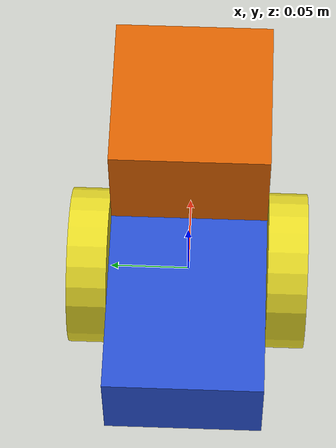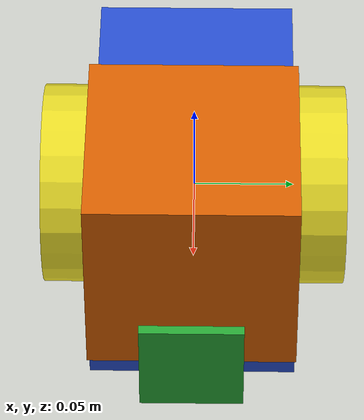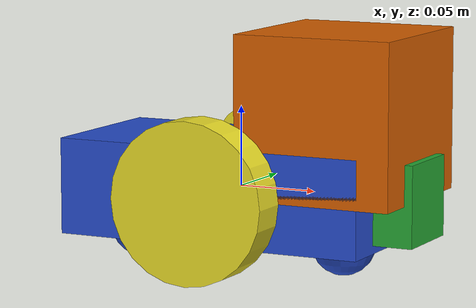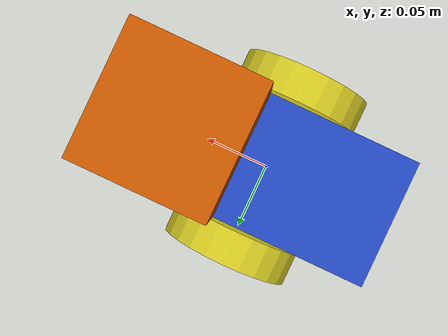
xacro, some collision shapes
<?xml version='1.0'?>

<robot name="my_robot" xmlns:xacro="http://www.ros.org/wiki/xacro">
  <xacro:include filename="$(find my_robot)/urdf/my_robot.gazebo" />

  <xacro:property name="cameraSize" value="0.05"/>
  <xacro:property name="cameraMass" value="0.1"/>

  <link name="robot_footprint"></link>

  <joint name="robot_footprint_joint" type="fixed">
    <origin xyz="0 0 0" rpy="0 0 0" />
    <parent link="robot_footprint"/>
    <child link="chassis" />
  </joint>

  <link name='chassis'>
    <pose>0 0 0.1 0 0 0</pose>

    <inertial>
      <mass value="8.0"/>
      <origin xyz="0.0 0 0" rpy=" 0 0 0"/>
      <inertia
          ixx="0.06" ixy="0" ixz="0"
          iyy="0.06" iyz="0"
          izz="0.06"
      />
    </inertial>

    <collision name='collision'>
      <origin xyz="0 0 0" rpy=" 0 0 0"/>
      <geometry>
        <box size=".2 .1 .06"/>
      </geometry><link name="camera">
    <collision>
      <origin xyz="0 0 0" rpy="0 0 0"/>
      <geometry>
        <box size="${cameraSize} ${cameraSize} ${cameraSize}"/>
      </geometry>
    </collision>

    <visual>
      <origin xyz="0 0 0" rpy="0 0 0"/>
      <geometry>
        <box size="${cameraSize} ${cameraSize} ${cameraSize}"/>
      </geometry>
      <material name="green"/>
    </visual>

    <inertial>
      <mass value="${cameraMass}" />
      <origin xyz="0 0 0" rpy="0 0 0"/>
      <box_inertia m="${cameraMass}" x="${cameraSize}" y="${cameraSize}" z="${cameraSize}" />
      <inertia ixx="1e-6" ixy="0" ixz="0" iyy="1e-6" iyz="0" izz="1e-6" />
    </inertial>
  </link>

  <joint name="camera_joint" type="fixed">
    <axis xyz="0 1 0" />
    <origin xyz=".1 0 0" rpy="0 0 0"/>
    <parent link="chassis"/>
    <child link="camera"/>
  </joint>
    </collision>

    <visual name='chassis_visual'>
      <origin xyz="0 0 0" rpy=" 0 0 0"/>
      <geometry>
        <box size=".2 .1 .06"/>
      </geometry>
    </visual>

    <collision name='back_caster_collision'>
      <origin xyz="-0.07 0 -0.03" rpy=" 0 0 0"/>
      <geometry>
        <sphere radius="0.0198"/>
      </geometry>
    </collision>

    <visual name='back_caster_visual'>
      <origin xyz="-0.07 0 -0.03" rpy=" 0 0 0"/>
      <geometry>
        <sphere radius="0.02"/>
      </geometry>
    </visual>

    <collision name='front_caster_collision'>
      <origin xyz="0.07 0 -0.03" rpy=" 0 0 0"/>
      <geometry>
        <sphere radius="0.0198"/>
      </geometry>
    </collision>

    <visual name='front_caster_visual'>
      <origin xyz="0.07 0 -0.03" rpy=" 0 0 0"/>
      <geometry>
        <sphere radius="0.02"/>
      </geometry>
    </visual>

  </link>

 <link name="left_wheel">
    <!--origin xyz="0.1 0.13 0.1" rpy="0 1.5707 1.5707"/-->
    <collision name="collision">
      <origin xyz="0 0 0" rpy="0 1.5707 1.5707"/>
      <geometry>
        <cylinder radius="0.05" length="0.025"/>
      </geometry>
    </collision>
    <visual name="left_wheel_visual">
      <origin xyz="0 0 0" rpy="0 1.5707 1.5707"/>
      <geometry>
        <cylinder radius="0.05" length="0.025"/>
      </geometry>
    </visual>
    <inertial>
      <origin xyz="0 0 0" rpy="0 1.5707 1.5707"/>
      <mass value="0.5"/>
      <inertia
        ixx=".05" ixy="0.0" ixz="0.0"
        iyy=".05" iyz="0.0"
        izz=".05"/>
    </inertial>
  </link>

  <link name="right_wheel">
    <!--origin xyz="0.1 -0.13 0.1" rpy="0 1.5707 1.5707"/-->
    <collision name="collision">
      <origin xyz="0 0 0" rpy="0 1.5707 1.5707"/>
      <geometry>
        <cylinder radius="0.05" length="0.025"/>
      </geometry>
    </collision>
    <visual name="right_wheel_visual">
      <origin xyz="0 0 0" rpy="0 1.5707 1.5707"/>
      <geometry>
        <cylinder radius="0.05" length="0.025"/>
      </geometry>
    </visual>
    <inertial>
      <origin xyz="0 0 0" rpy="0 1.5707 1.5707"/>
      <mass value="0.5"/>
      <inertia
        ixx=".05" ixy="0.0" ixz="0.0"
        iyy=".05" iyz="0.0"
        izz=".05"/>
    </inertial>
  </link>

  <joint type="continuous" name="left_wheel_hinge">
    <origin xyz="0 0.063 0" rpy="0 0 0"/>
    <!--origin xyz="0.1 0.13 0" rpy="0 1.5707 1.5707"/-->
    <child link="left_wheel"/>
    <parent link="chassis"/>
    <axis xyz="0 1 0" rpy="0 0 0"/>
    <limit effort="10000" velocity="1000"/>
    <joint_properties damping="1.0" friction="1.0"/>
  </joint>

  <joint type="continuous" name="right_wheel_hinge">
    <origin xyz="0 -0.063 0" rpy="0 0 0"/>
    <!--origin xyz="0.1 -0.13 0" rpy="0 1.5707 1.5707"/-->
    <child link="right_wheel"/>
    <parent link="chassis"/>
    <axis xyz="0 1 0" rpy="0 0 0"/>
    <limit effort="10000" velocity="1000"/>
    <joint_properties damping="1.0" friction="1.0"/>
  </joint>

  <link name="camera">
    <collision>
      <origin xyz="0 0 0" rpy="0 0 0"/>
      <geometry>
        <box size="${cameraSize} ${cameraSize} ${cameraSize}"/>
      </geometry>
    </collision>

    <visual>
      <origin xyz="0 0 0" rpy="0 0 0"/>
      <geometry>
        <box size="${cameraSize} ${cameraSize} ${cameraSize}"/>
      </geometry>
      <material name="green"/>
    </visual>

    <inertial>
      <mass value="${cameraMass}" />
      <origin xyz="0 0 0" rpy="0 0 0"/>
      <box_inertia m="${cameraMass}" x="${cameraSize}" y="${cameraSize}" z="${cameraSize}" />
      <inertia ixx="1e-6" ixy="0" ixz="0" iyy="1e-6" iyz="0" izz="1e-6" />
    </inertial>
  </link>

  <joint name="camera_joint" type="fixed">
    <axis xyz="0 1 0" />
    <origin xyz=".1 0 0" rpy="0 0 0"/>
    <parent link="chassis"/>
    <child link="camera"/>
  </joint>

 <joint name="hokuyo_joint" type="fixed">
    <axis xyz="0 1 0" />
    <origin xyz=".07 0 .05" rpy="0 0 0"/>
    <parent link="chassis"/>
    <child link="hokuyo"/>
  </joint>

  <!-- Hokuyo Laser -->
  <link name="hokuyo">
    <collision>
      <origin xyz="0 0 0" rpy="0 0 0"/>
      <geometry>
    <box size="0.1 0.1 0.1"/>
      </geometry>
    </collision>

    <visual>
      <origin xyz="0 0 0" rpy="0 0 0"/>
      <geometry>
        <mesh filename= "package://my_robot/meshes/hokuyo.dae"/>
      </geometry>
    </visual>

    <inertial>
      <mass value="1e-5" />
      <origin xyz="0 0 0" rpy="0 0 0"/>
      <inertia ixx="1e-6" ixy="0" ixz="0" iyy="1e-6" iyz="0" izz="1e-6" />
    </inertial>
  </link>

<gazebo reference="left_wheel">
    <material>Gazebo/Yellow</material>
</gazebo>

<gazebo reference="right_wheel">
    <material>Gazebo/Yellow</material>
</gazebo>

<gazebo reference="chassis">
    <material>Gazebo/Blue</material>
</gazebo>

<gazebo reference="camera">
    <material>Gazebo/Gray</material>
</gazebo>

</robot>
